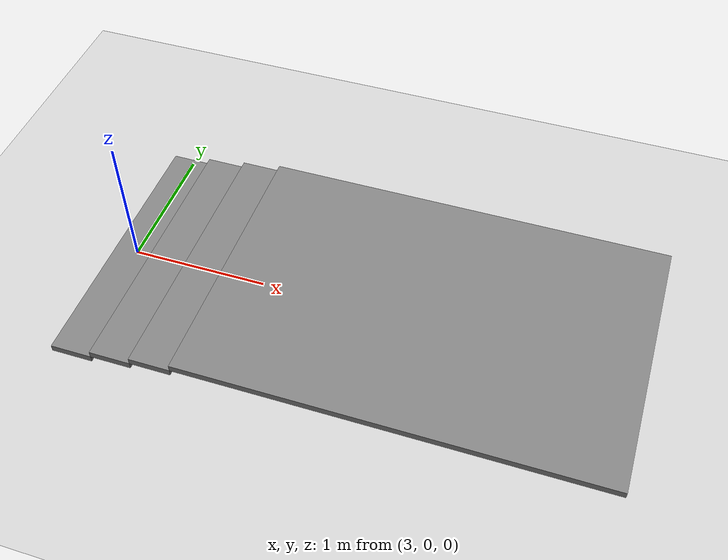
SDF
<?xml version="1.0" ?>
<sdf version="1.8">
  <world name="stairs">
    <physics name="1ms" type="ignored">
      <max_step_size>0.001</max_step_size>
      <real_time_factor>1.0</real_time_factor>
    </physics>
    <plugin
      filename="gz-sim-physics-system"
      name="gz::sim::systems::Physics">
    </plugin>
    <plugin
      filename="gz-sim-user-commands-system"
      name="gz::sim::systems::UserCommands">
    </plugin>
    <plugin
      filename="gz-sim-scene-broadcaster-system"
      name="gz::sim::systems::SceneBroadcaster">
    </plugin>

    <light type="directional" name="sun">
      <cast_shadows>true</cast_shadows>
      <pose>0 0 10 0 0 0</pose>
      <diffuse>0.8 0.8 0.8 1</diffuse>
      <specular>0.2 0.2 0.2 1</specular>
      <attenuation>
        <range>1000</range>
        <constant>0.9</constant>
        <linear>0.01</linear>
        <quadratic>0.001</quadratic>
      </attenuation>
      <direction>-0.5 0.1 -0.9</direction>
    </light>

    <model name="ground_plane">
      <static>true</static>
      <link name="link">
        <collision name="collision">
          <geometry>
            <plane>
              <normal>0 0 1</normal>
            </plane>
          </geometry>
        </collision>
        <visual name="visual">
          <geometry>
            <plane>
              <normal>0 0 1</normal>
              <size>100 100</size>
            </plane>
          </geometry>
          <material>
            <ambient>0.8 0.8 0.8 1</ambient>
            <diffuse>0.8 0.8 0.8 1</diffuse>
            <specular>0.8 0.8 0.8 1</specular>
          </material>
        </visual>
      </link>
    </model>

    <!-- Stairs Model -->
    <model name="stairs_course">
      <static>true</static>
      <!-- Base pose Z=0.025 so a 0.05 thick box rests on the ground (0) -->
      <pose>3.0 0 0.025 0 0 0</pose>

      <!-- Step 1 (0 to 0.05m) -->
      <link name="step_1">
        <collision name="col1">
          <geometry>
            <box><size>0.3 2.0 0.05</size></box>
          </geometry>
        </collision>
        <visual name="vis1">
          <geometry>
            <box><size>0.3 2.0 0.05</size></box>
          </geometry>
          <material><ambient>0.5 0.5 0.5 1</ambient></material>
        </visual>
      </link>

      <!-- Step 2 (0.05m to 0.10m) -->
      <link name="step_2">
        <pose>0.3 0 0.05 0 0 0</pose>
        <collision name="col2">
          <geometry>
            <box><size>0.3 2.0 0.05</size></box>
          </geometry>
        </collision>
        <visual name="vis2">
          <geometry>
            <box><size>0.3 2.0 0.05</size></box>
          </geometry>
          <material><ambient>0.5 0.5 0.5 1</ambient></material>
        </visual>
      </link>

      <!-- Step 3 (0.10m to 0.15m) -->
      <link name="step_3">
        <pose>0.6 0 0.10 0 0 0</pose>
        <collision name="col3">
          <geometry>
            <box><size>0.3 2.0 0.05</size></box>
          </geometry>
        </collision>
        <visual name="vis3">
          <geometry>
            <box><size>0.3 2.0 0.05</size></box>
          </geometry>
          <material><ambient>0.5 0.5 0.5 1</ambient></material>
        </visual>
      </link>

      <!-- Top Platform (0.15m to 0.20m) -->
      <link name="top_platform">
        <pose>2.25 0 0.15 0 0 0</pose>
        <collision name="col_plat">
          <geometry>
            <box><size>3.0 2.0 0.05</size></box>
          </geometry>
        </collision>
        <visual name="vis_plat">
          <geometry>
            <box><size>3.0 2.0 0.05</size></box>
          </geometry>
          <material><ambient>0.5 0.5 0.5 1</ambient></material>
        </visual>
      </link>

    </model>
  </world>
</sdf>
